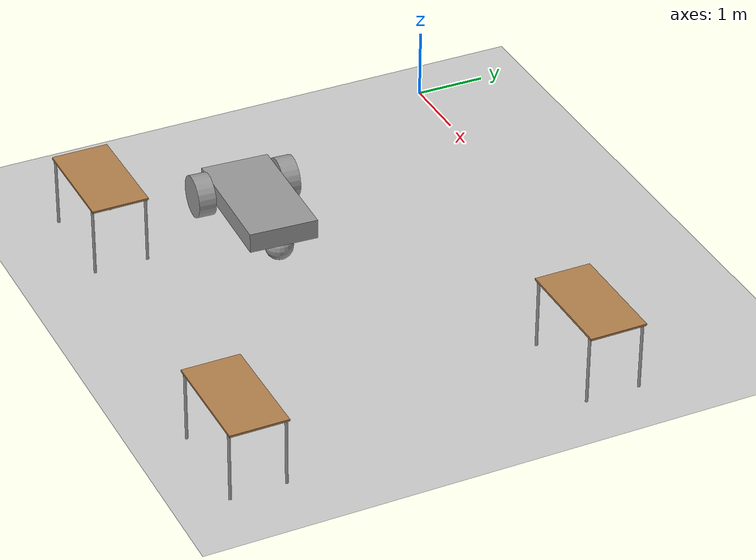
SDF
<sdf version="1.6">
 <world name="default">
  <model name="ground_plane">
   <static>1</static>
   <link name="link">
    <collision name="collision">
     <geometry><plane><normal>0 0 1</normal><size>100 100</size></plane></geometry>
     <surface>
      <contact><collide_bitmask>65535</collide_bitmask></contact>
      <friction><ode><mu>100</mu><mu2>50</mu2></ode></friction>
     </surface>
    </collision>
    <visual name="visual">
     <cast_shadows>0</cast_shadows>
     <geometry><plane><normal>0 0 1</normal><size>100 100</size></plane></geometry>
     <material>
      <script><uri>file://media/materials/scripts/gazebo.material</uri><name>Gazebo/Grey</name></script>
     </material>
    </visual>
   </link>
  </model>
  <model name="table">
   <static>1</static>
   <link name="link">
    <collision name="surface">
     <pose>0 0 1 0 -0 0</pose>
     <geometry><box><size>1.5 0.8 0.03</size></box></geometry>
     <surface><friction><ode><mu>0.6</mu><mu2>0.6</mu2></ode></friction></surface>
    </collision>
    <visual name="visual1">
     <pose>0 0 1 0 -0 0</pose>
     <geometry><box><size>1.5 0.8 0.03</size></box></geometry>
     <material>
      <script><uri>file://media/materials/scripts/gazebo.material</uri><name>Gazebo/Wood</name></script>
     </material>
    </visual>
    <collision name="front_left_leg">
     <pose>0.68 0.38 0.5 0 -0 0</pose>
     <geometry><cylinder><radius>0.02</radius><length>1</length></cylinder></geometry>
    </collision>
    <visual name="front_left_leg">
     <pose>0.68 0.38 0.5 0 -0 0</pose>
     <geometry><cylinder><radius>0.02</radius><length>1</length></cylinder></geometry>
     <material>
      <script><uri>file://media/materials/scripts/gazebo.material</uri><name>Gazebo/Grey</name></script>
     </material>
    </visual>
    <collision name="front_right_leg">
     <pose>0.68 -0.38 0.5 0 -0 0</pose>
     <geometry><cylinder><radius>0.02</radius><length>1</length></cylinder></geometry>
    </collision>
    <visual name="front_right_leg">
     <pose>0.68 -0.38 0.5 0 -0 0</pose>
     <geometry><cylinder><radius>0.02</radius><length>1</length></cylinder></geometry>
     <material>
      <script><uri>file://media/materials/scripts/gazebo.material</uri><name>Gazebo/Grey</name></script>
     </material>
    </visual>
    <collision name="back_right_leg">
     <pose>-0.68 -0.38 0.5 0 -0 0</pose>
     <geometry><cylinder><radius>0.02</radius><length>1</length></cylinder></geometry>
    </collision>
    <visual name="back_right_leg">
     <pose>-0.68 -0.38 0.5 0 -0 0</pose>
     <geometry><cylinder><radius>0.02</radius><length>1</length></cylinder></geometry>
     <material>
      <script><uri>file://media/materials/scripts/gazebo.material</uri><name>Gazebo/Grey</name></script>
     </material>
    </visual>
    <collision name="back_left_leg">
     <pose>-0.68 0.38 0.5 0 -0 0</pose>
     <geometry><cylinder><radius>0.02</radius><length>1</length></cylinder></geometry>
    </collision>
    <visual name="back_left_leg">
     <pose>-0.68 0.38 0.5 0 -0 0</pose>
     <geometry><cylinder><radius>0.02</radius><length>1</length></cylinder></geometry>
     <material>
      <script><uri>file://media/materials/scripts/gazebo.material</uri><name>Gazebo/Grey</name></script>
     </material>
    </visual>
   </link>
   <pose>1.64308 -5.63445 0 0 -0 0</pose>
  </model>
  <model name="table_0">
   <static>1</static>
   <link name="link">
    <collision name="surface">
     <pose>0 0 1 0 -0 0</pose>
     <geometry><box><size>1.5 0.8 0.03</size></box></geometry>
     <surface><friction><ode><mu>0.6</mu><mu2>0.6</mu2></ode></friction></surface>
    </collision>
    <visual name="visual1">
     <pose>0 0 1 0 -0 0</pose>
     <geometry><box><size>1.5 0.8 0.03</size></box></geometry>
     <material>
      <script><uri>file://media/materials/scripts/gazebo.material</uri><name>Gazebo/Wood</name></script>
     </material>
    </visual>
    <collision name="front_left_leg">
     <pose>0.68 0.38 0.5 0 -0 0</pose>
     <geometry><cylinder><radius>0.02</radius><length>1</length></cylinder></geometry>
    </collision>
    <visual name="front_left_leg">
     <pose>0.68 0.38 0.5 0 -0 0</pose>
     <geometry><cylinder><radius>0.02</radius><length>1</length></cylinder></geometry>
     <material>
      <script><uri>file://media/materials/scripts/gazebo.material</uri><name>Gazebo/Grey</name></script>
     </material>
    </visual>
    <collision name="front_right_leg">
     <pose>0.68 -0.38 0.5 0 -0 0</pose>
     <geometry><cylinder><radius>0.02</radius><length>1</length></cylinder></geometry>
    </collision>
    <visual name="front_right_leg">
     <pose>0.68 -0.38 0.5 0 -0 0</pose>
     <geometry><cylinder><radius>0.02</radius><length>1</length></cylinder></geometry>
     <material>
      <script><uri>file://media/materials/scripts/gazebo.material</uri><name>Gazebo/Grey</name></script>
     </material>
    </visual>
    <collision name="back_right_leg">
     <pose>-0.68 -0.38 0.5 0 -0 0</pose>
     <geometry><cylinder><radius>0.02</radius><length>1</length></cylinder></geometry>
    </collision>
    <visual name="back_right_leg">
     <pose>-0.68 -0.38 0.5 0 -0 0</pose>
     <geometry><cylinder><radius>0.02</radius><length>1</length></cylinder></geometry>
     <material>
      <script><uri>file://media/materials/scripts/gazebo.material</uri><name>Gazebo/Grey</name></script>
     </material>
    </visual>
    <collision name="back_left_leg">
     <pose>-0.68 0.38 0.5 0 -0 0</pose>
     <geometry><cylinder><radius>0.02</radius><length>1</length></cylinder></geometry>
    </collision>
    <visual name="back_left_leg">
     <pose>-0.68 0.38 0.5 0 -0 0</pose>
     <geometry><cylinder><radius>0.02</radius><length>1</length></cylinder></geometry>
     <material>
      <script><uri>file://media/materials/scripts/gazebo.material</uri><name>Gazebo/Grey</name></script>
     </material>
    </visual>
   </link>
   <pose>6.92648 -5.9588 0 0 -0 0</pose>
  </model>
  <model name="table_1">
   <static>1</static>
   <link name="link">
    <collision name="surface">
     <pose>0 0 1 0 -0 0</pose>
     <geometry><box><size>1.5 0.8 0.03</size></box></geometry>
     <surface><friction><ode><mu>0.6</mu><mu2>0.6</mu2></ode></friction></surface>
    </collision>
    <visual name="visual1">
     <pose>0 0 1 0 -0 0</pose>
     <geometry><box><size>1.5 0.8 0.03</size></box></geometry>
     <material>
      <script><uri>file://media/materials/scripts/gazebo.material</uri><name>Gazebo/Wood</name></script>
     </material>
    </visual>
    <collision name="front_left_leg">
     <pose>0.68 0.38 0.5 0 -0 0</pose>
     <geometry><cylinder><radius>0.02</radius><length>1</length></cylinder></geometry>
    </collision>
    <visual name="front_left_leg">
     <pose>0.68 0.38 0.5 0 -0 0</pose>
     <geometry><cylinder><radius>0.02</radius><length>1</length></cylinder></geometry>
     <material>
      <script><uri>file://media/materials/scripts/gazebo.material</uri><name>Gazebo/Grey</name></script>
     </material>
    </visual>
    <collision name="front_right_leg">
     <pose>0.68 -0.38 0.5 0 -0 0</pose>
     <geometry><cylinder><radius>0.02</radius><length>1</length></cylinder></geometry>
    </collision>
    <visual name="front_right_leg">
     <pose>0.68 -0.38 0.5 0 -0 0</pose>
     <geometry><cylinder><radius>0.02</radius><length>1</length></cylinder></geometry>
     <material>
      <script><uri>file://media/materials/scripts/gazebo.material</uri><name>Gazebo/Grey</name></script>
     </material>
    </visual>
    <collision name="back_right_leg">
     <pose>-0.68 -0.38 0.5 0 -0 0</pose>
     <geometry><cylinder><radius>0.02</radius><length>1</length></cylinder></geometry>
    </collision>
    <visual name="back_right_leg">
     <pose>-0.68 -0.38 0.5 0 -0 0</pose>
     <geometry><cylinder><radius>0.02</radius><length>1</length></cylinder></geometry>
     <material>
      <script><uri>file://media/materials/scripts/gazebo.material</uri><name>Gazebo/Grey</name></script>
     </material>
    </visual>
    <collision name="back_left_leg">
     <pose>-0.68 0.38 0.5 0 -0 0</pose>
     <geometry><cylinder><radius>0.02</radius><length>1</length></cylinder></geometry>
    </collision>
    <visual name="back_left_leg">
     <pose>-0.68 0.38 0.5 0 -0 0</pose>
     <geometry><cylinder><radius>0.02</radius><length>1</length></cylinder></geometry>
     <material>
      <script><uri>file://media/materials/scripts/gazebo.material</uri><name>Gazebo/Grey</name></script>
     </material>
    </visual>
   </link>
   <pose>7.00832 -1.05344 0 0 -0 0</pose>
  </model>
  <model name="model_1">
   <link name="link_0">
    <pose>0.178087 -1.52563 0.267494 0 -0 0</pose>
    <inertial>
     <mass>0.51884</mass>
     <inertia>
      <ixx>0.0443989</ixx>
      <ixy>0</ixy>
      <ixz>0</ixz>
      <iyy>0.161858</iyy>
      <iyz>0</iyz>
      <izz>0.199574</izz>
     </inertia>
    </inertial>
    <visual name="visual">
     <geometry><box><size>1.91475 0.97447 0.278011</size></box></geometry>
     <material>
      <lighting>1</lighting>
      <script><uri>file://media/materials/scripts/gazebo.material</uri><name>Gazebo/Grey</name></script>
      <shader type="pixel"><normal_map>__default__</normal_map></shader>
      <ambient>0.3 0.3 0.3 1</ambient>
      <diffuse>0.7 0.7 0.7 1</diffuse>
      <specular>0.01 0.01 0.01 1</specular>
      <emissive>0 0 0 1</emissive>
     </material>
    </visual>
    <collision name="collision">
     <geometry><box><size>1.91475 0.97447 0.278011</size></box></geometry>
     <surface>
      <friction>
       <ode><mu>1</mu><mu2>1</mu2><fdir1>0 0 0</fdir1><slip1>0</slip1><slip2>0</slip2></ode>
       <torsional>
        <coefficient>1</coefficient>
        <patch_radius>0</patch_radius>
        <surface_radius>0</surface_radius>
        <use_patch_radius>1</use_patch_radius>
        <ode><slip>0</slip></ode>
       </torsional>
      </friction>
      <bounce><restitution_coefficient>0</restitution_coefficient><threshold>1e+06</threshold></bounce>
      <contact>
       <collide_without_contact>0</collide_without_contact>
       <collide_without_contact_bitmask>1</collide_without_contact_bitmask>
       <collide_bitmask>1</collide_bitmask>
       <ode>
        <soft_cfm>0</soft_cfm>
        <soft_erp>0.2</soft_erp>
        <kp>1e+13</kp>
        <kd>1</kd>
        <max_vel>0.01</max_vel>
        <min_depth>0</min_depth>
       </ode>
       <bullet>
        <split_impulse>1</split_impulse>
        <split_impulse_penetration_threshold>-0.01</split_impulse_penetration_threshold>
        <soft_cfm>0</soft_cfm>
        <soft_erp>0.2</soft_erp>
        <kp>1e+13</kp>
        <kd>1</kd>
       </bullet>
      </contact>
     </surface>
    </collision>
   </link>
   <link name="link_1">
    <pose>-0.479288 -0.898366 0.167494 1.5707 -0 0</pose>
    <inertial>
     <mass>1</mass>
     <inertia><ixx>0.145833</ixx><ixy>0</ixy><ixz>0</ixz><iyy>0.145833</iyy><iyz>0</iyz><izz>0.125</izz></inertia>
    </inertial>
    <visual name="visual">
     <geometry><cylinder><radius>0.3</radius><length>0.25</length></cylinder></geometry>
     <material>
      <lighting>1</lighting>
      <script><uri>file://media/materials/scripts/gazebo.material</uri><name>Gazebo/Grey</name></script>
      <shader type="pixel"><normal_map>__default__</normal_map></shader>
      <ambient>0.3 0.3 0.3 1</ambient>
      <diffuse>0.7 0.7 0.7 1</diffuse>
      <specular>0.01 0.01 0.01 1</specular>
      <emissive>0 0 0 1</emissive>
     </material>
    </visual>
    <collision name="collision">
     <geometry><cylinder><radius>0.3</radius><length>0.25</length></cylinder></geometry>
     <surface>
      <friction>
       <ode><mu>1</mu><mu2>1</mu2><fdir1>0 0 0</fdir1><slip1>0</slip1><slip2>0</slip2></ode>
       <torsional>
        <coefficient>1</coefficient>
        <patch_radius>0</patch_radius>
        <surface_radius>0</surface_radius>
        <use_patch_radius>1</use_patch_radius>
        <ode><slip>0</slip></ode>
       </torsional>
      </friction>
      <bounce><restitution_coefficient>0</restitution_coefficient><threshold>1e+06</threshold></bounce>
      <contact>
       <collide_without_contact>0</collide_without_contact>
       <collide_without_contact_bitmask>1</collide_without_contact_bitmask>
       <collide_bitmask>1</collide_bitmask>
       <ode>
        <soft_cfm>0</soft_cfm>
        <soft_erp>0.2</soft_erp>
        <kp>1e+13</kp>
        <kd>1</kd>
        <max_vel>0.01</max_vel>
        <min_depth>0</min_depth>
       </ode>
       <bullet>
        <split_impulse>1</split_impulse>
        <split_impulse_penetration_threshold>-0.01</split_impulse_penetration_threshold>
        <soft_cfm>0</soft_cfm>
        <soft_erp>0.2</soft_erp>
        <kp>1e+13</kp>
        <kd>1</kd>
       </bullet>
      </contact>
     </surface>
    </collision>
   </link>
   <link name="link_1_clone">
    <pose>-0.479288 -2.13789 0.167494 1.5707 -0 0</pose>
    <inertial>
     <mass>1</mass>
     <inertia><ixx>0.145833</ixx><ixy>0</ixy><ixz>0</ixz><iyy>0.145833</iyy><iyz>0</iyz><izz>0.125</izz></inertia>
    </inertial>
    <visual name="visual">
     <geometry><cylinder><radius>0.3</radius><length>0.25</length></cylinder></geometry>
     <material>
      <lighting>1</lighting>
      <script><uri>file://media/materials/scripts/gazebo.material</uri><name>Gazebo/Grey</name></script>
      <shader type="pixel"><normal_map>__default__</normal_map></shader>
      <ambient>0.3 0.3 0.3 1</ambient>
      <diffuse>0.7 0.7 0.7 1</diffuse>
      <specular>0.01 0.01 0.01 1</specular>
      <emissive>0 0 0 1</emissive>
     </material>
    </visual>
    <collision name="collision">
     <geometry><cylinder><radius>0.3</radius><length>0.25</length></cylinder></geometry>
     <surface>
      <friction>
       <ode><mu>1</mu><mu2>1</mu2><fdir1>0 0 0</fdir1><slip1>0</slip1><slip2>0</slip2></ode>
       <torsional>
        <coefficient>1</coefficient>
        <patch_radius>0</patch_radius>
        <surface_radius>0</surface_radius>
        <use_patch_radius>1</use_patch_radius>
        <ode><slip>0</slip></ode>
       </torsional>
      </friction>
      <bounce><restitution_coefficient>0</restitution_coefficient><threshold>1e+06</threshold></bounce>
      <contact>
       <collide_without_contact>0</collide_without_contact>
       <collide_without_contact_bitmask>1</collide_without_contact_bitmask>
       <collide_bitmask>1</collide_bitmask>
       <ode>
        <soft_cfm>0</soft_cfm>
        <soft_erp>0.2</soft_erp>
        <kp>1e+13</kp>
        <kd>1</kd>
        <max_vel>0.01</max_vel>
        <min_depth>0</min_depth>
       </ode>
       <bullet>
        <split_impulse>1</split_impulse>
        <split_impulse_penetration_threshold>-0.01</split_impulse_penetration_threshold>
        <soft_cfm>0</soft_cfm>
        <soft_erp>0.2</soft_erp>
        <kp>1e+13</kp>
        <kd>1</kd>
       </bullet>
      </contact>
     </surface>
    </collision>
   </link>
   <link name="link_2">
    <pose>0.935461 -1.52563 0.015594 0 -0 0</pose>
    <inertial>
     <mass>1</mass>
     <inertia><ixx>0.1</ixx><ixy>0</ixy><ixz>0</ixz><iyy>0.1</iyy><iyz>0</iyz><izz>0.1</izz></inertia>
    </inertial>
    <visual name="visual">
     <geometry><sphere><radius>0.2</radius></sphere></geometry>
     <material>
      <lighting>1</lighting>
      <script><uri>file://media/materials/scripts/gazebo.material</uri><name>Gazebo/Grey</name></script>
      <shader type="pixel"><normal_map>__default__</normal_map></shader>
      <ambient>0.3 0.3 0.3 1</ambient>
      <diffuse>0.7 0.7 0.7 1</diffuse>
      <specular>0.01 0.01 0.01 1</specular>
      <emissive>0 0 0 1</emissive>
     </material>
    </visual>
    <collision name="collision">
     <geometry><sphere><radius>0.2</radius></sphere></geometry>
     <surface>
      <friction>
       <ode><mu>1</mu><mu2>1</mu2><fdir1>0 0 0</fdir1><slip1>0</slip1><slip2>0</slip2></ode>
       <torsional>
        <coefficient>1</coefficient>
        <patch_radius>0</patch_radius>
        <surface_radius>0</surface_radius>
        <use_patch_radius>1</use_patch_radius>
        <ode><slip>0</slip></ode>
       </torsional>
      </friction>
      <bounce><restitution_coefficient>0</restitution_coefficient><threshold>1e+06</threshold></bounce>
      <contact>
       <collide_without_contact>0</collide_without_contact>
       <collide_without_contact_bitmask>1</collide_without_contact_bitmask>
       <collide_bitmask>1</collide_bitmask>
       <ode>
        <soft_cfm>0</soft_cfm>
        <soft_erp>0.2</soft_erp>
        <kp>1e+13</kp>
        <kd>1</kd>
        <max_vel>0.01</max_vel>
        <min_depth>0</min_depth>
       </ode>
       <bullet>
        <split_impulse>1</split_impulse>
        <split_impulse_penetration_threshold>-0.01</split_impulse_penetration_threshold>
        <soft_cfm>0</soft_cfm>
        <soft_erp>0.2</soft_erp>
        <kp>1e+13</kp>
        <kd>1</kd>
       </bullet>
      </contact>
     </surface>
    </collision>
   </link>
   <joint name="link_0_JOINT_0" type="revolute">
    <parent>link_0</parent>
    <child>link_1</child>
    <axis>
     <xyz>0 0 1</xyz>
     <use_parent_model_frame>0</use_parent_model_frame>
     <limit>
      <lower>-1.79769e+308</lower>
      <upper>1.79769e+308</upper>
      <effort>-1</effort>
      <velocity>-1</velocity>
     </limit>
     <dynamics>
      <spring_reference>0</spring_reference>
      <spring_stiffness>0</spring_stiffness>
      <damping>0</damping>
     </dynamics>
    </axis>
    <physics>
     <ode><limit><cfm>0</cfm><erp>0.2</erp></limit><suspension><cfm>0</cfm><erp>0.2</erp></suspension></ode>
    </physics>
   </joint>
   <joint name="link_0_JOINT_1" type="revolute">
    <parent>link_0</parent>
    <child>link_1_clone</child>
    <axis>
     <xyz>0 0 1</xyz>
     <use_parent_model_frame>0</use_parent_model_frame>
     <limit>
      <lower>-1.79769e+308</lower>
      <upper>1.79769e+308</upper>
      <effort>-1</effort>
      <velocity>-1</velocity>
     </limit>
     <dynamics>
      <spring_reference>0</spring_reference>
      <spring_stiffness>0</spring_stiffness>
      <damping>0</damping>
     </dynamics>
    </axis>
    <physics>
     <ode><limit><cfm>0</cfm><erp>0.2</erp></limit><suspension><cfm>0</cfm><erp>0.2</erp></suspension></ode>
    </physics>
   </joint>
   <joint name="link_0_JOINT_3" type="revolute">
    <parent>link_0</parent>
    <child>link_1</child>
    <axis>
     <xyz>1 0 0</xyz>
     <use_parent_model_frame>0</use_parent_model_frame>
     <limit>
      <lower>-1.79769e+308</lower>
      <upper>1.79769e+308</upper>
      <effort>-1</effort>
      <velocity>-1</velocity>
     </limit>
     <dynamics>
      <spring_reference>0</spring_reference>
      <spring_stiffness>0</spring_stiffness>
      <damping>0</damping>
     </dynamics>
    </axis>
    <physics>
     <ode><limit><cfm>0</cfm><erp>0.2</erp></limit><suspension><cfm>0</cfm><erp>0.2</erp></suspension></ode>
    </physics>
   </joint>
   <joint name="link_0_JOINT_4" type="revolute">
    <parent>link_0</parent>
    <child>link_1_clone</child>
    <axis>
     <xyz>0 0 1</xyz>
     <use_parent_model_frame>0</use_parent_model_frame>
     <limit>
      <lower>-1.79769e+308</lower>
      <upper>1.79769e+308</upper>
      <effort>-1</effort>
      <velocity>-1</velocity>
     </limit>
     <dynamics>
      <spring_reference>0</spring_reference>
      <spring_stiffness>0</spring_stiffness>
      <damping>0</damping>
     </dynamics>
    </axis>
    <physics>
     <ode><limit><cfm>0</cfm><erp>0.2</erp></limit><suspension><cfm>0</cfm><erp>0.2</erp></suspension></ode>
    </physics>
   </joint>
   <joint name="link_0_JOINT_5" type="revolute">
    <parent>link_0</parent>
    <child>link_1</child>
    <axis>
     <xyz>0 0 1</xyz>
     <use_parent_model_frame>0</use_parent_model_frame>
     <limit>
      <lower>-1.79769e+308</lower>
      <upper>1.79769e+308</upper>
      <effort>-1</effort>
      <velocity>-1</velocity>
     </limit>
     <dynamics>
      <spring_reference>0</spring_reference>
      <spring_stiffness>0</spring_stiffness>
      <damping>0</damping>
     </dynamics>
    </axis>
    <physics>
     <ode><limit><cfm>0</cfm><erp>0.2</erp></limit><suspension><cfm>0</cfm><erp>0.2</erp></suspension></ode>
    </physics>
   </joint>
   <joint name="link_0_JOINT_6" type="revolute">
    <parent>link_0</parent>
    <child>link_1</child>
    <axis>
     <xyz>0 0 1</xyz>
     <use_parent_model_frame>0</use_parent_model_frame>
     <limit>
      <lower>-1.79769e+308</lower>
      <upper>1.79769e+308</upper>
      <effort>-1</effort>
      <velocity>-1</velocity>
     </limit>
     <dynamics>
      <spring_reference>0</spring_reference>
      <spring_stiffness>0</spring_stiffness>
      <damping>0</damping>
     </dynamics>
    </axis>
    <physics>
     <ode><limit><cfm>0</cfm><erp>0.2</erp></limit><suspension><cfm>0</cfm><erp>0.2</erp></suspension></ode>
    </physics>
   </joint>
   <joint name="link_0_JOINT_7" type="revolute">
    <parent>link_0</parent>
    <child>link_1_clone</child>
    <axis>
     <xyz>0 0 1</xyz>
     <use_parent_model_frame>0</use_parent_model_frame>
     <limit>
      <lower>-1.79769e+308</lower>
      <upper>1.79769e+308</upper>
      <effort>-1</effort>
      <velocity>-1</velocity>
     </limit>
     <dynamics>
      <spring_reference>0</spring_reference>
      <spring_stiffness>0</spring_stiffness>
      <damping>0</damping>
     </dynamics>
    </axis>
    <physics>
     <ode><limit><cfm>0</cfm><erp>0.2</erp></limit><suspension><cfm>0</cfm><erp>0.2</erp></suspension></ode>
    </physics>
   </joint>
   <joint name="link_0_JOINT_8" type="ball">
    <parent>link_0</parent>
    <child>link_2</child>
    <physics>
     <ode><limit><cfm>0</cfm><erp>0.2</erp></limit><suspension><cfm>0</cfm><erp>0.2</erp></suspension></ode>
    </physics>
   </joint>
   <static>0</static>
   <pose>2.20141 -2.04691 0.150171 0 -0.036606 -0.058692</pose>
  </model>
 </world>
</sdf>
